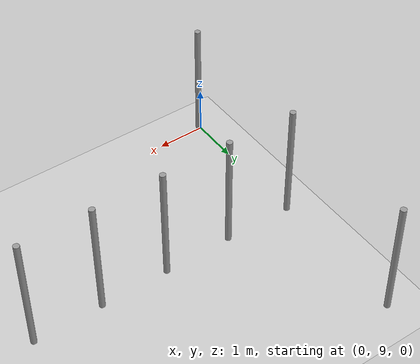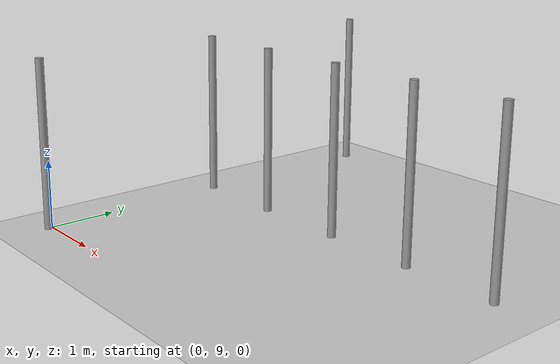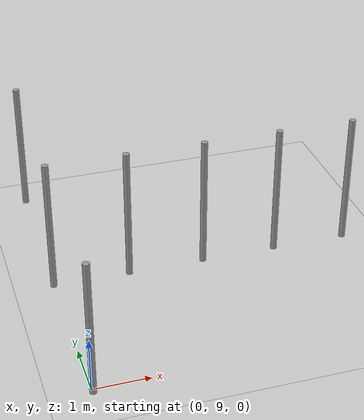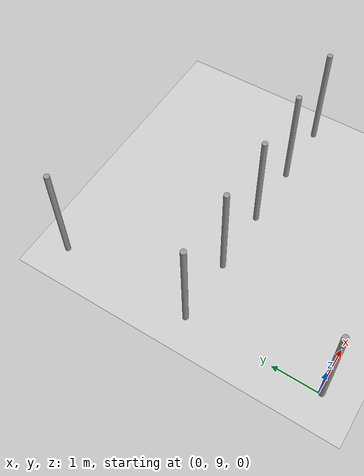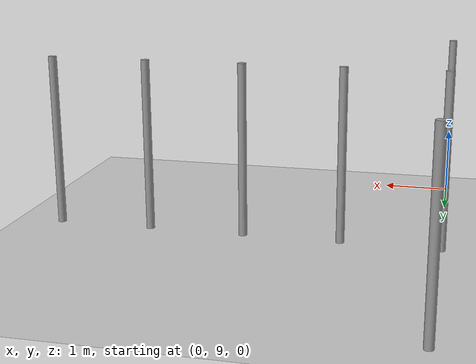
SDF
<sdf version="1.6">
 <world name="default">
  <model name="ground_plane">
   <static>1</static>
   <link name="link">
    <collision name="collision">
     <geometry><plane><normal>0 0 1</normal><size>100 100</size></plane></geometry>
     <surface><friction><ode><mu>100</mu><mu2>50</mu2></ode></friction></surface>
    </collision>
    <visual name="visual">
     <cast_shadows>0</cast_shadows>
     <geometry><plane><normal>0 0 1</normal><size>100 100</size></plane></geometry>
     <material>
      <script><uri>file://media/materials/scripts/gazebo.material</uri><name>Gazebo/Grey</name></script>
     </material>
    </visual>
   </link>
  </model>
  <model name="pole_0">
   <link name="link_0">
    <inertial>
     <mass>0.0364582</mass>
     <inertia>
      <ixx>0.00312124</ixx>
      <ixy>0</ixy>
      <ixz>0</ixz>
      <iyy>0.00312124</iyy>
      <iyz>0</iyz>
      <izz>0.00016615</izz>
     </inertia>
    </inertial>
    <visual name="visual">
     <geometry><cylinder><radius>0.06</radius><length>2.5</length></cylinder></geometry>
     <material>
      <lighting>1</lighting>
      <script><uri>file://media/materials/scripts/gazebo.material</uri><name>Gazebo/Grey</name></script>
      <ambient>0.3 0.3 0.3 1</ambient>
      <diffuse>0.7 0.7 0.7 1</diffuse>
      <specular>0.01 0.01 0.01 1</specular>
      <emissive>0 0 0 1</emissive>
      <shader type="vertex"><normal_map>__default__</normal_map></shader>
     </material>
    </visual>
    <collision name="collision">
     <geometry><cylinder><radius>0.06</radius><length>2.5</length></cylinder></geometry>
     <surface>
      <friction>
       <ode><mu>1</mu><mu2>1</mu2><fdir1>0 0 0</fdir1><slip1>0</slip1><slip2>0</slip2></ode>
       <torsional>
        <coefficient>1</coefficient>
        <patch_radius>0</patch_radius>
        <surface_radius>0</surface_radius>
        <use_patch_radius>1</use_patch_radius>
        <ode><slip>0</slip></ode>
       </torsional>
      </friction>
      <bounce><restitution_coefficient>0</restitution_coefficient><threshold>1e+06</threshold></bounce>
      <contact>
       <collide_without_contact>0</collide_without_contact>
       <collide_without_contact_bitmask>1</collide_without_contact_bitmask>
       <collide_bitmask>1</collide_bitmask>
       <ode>
        <soft_cfm>0</soft_cfm>
        <soft_erp>0.2</soft_erp>
        <kp>1e+13</kp>
        <kd>1</kd>
        <max_vel>0.01</max_vel>
        <min_depth>0</min_depth>
       </ode>
       <bullet>
        <split_impulse>1</split_impulse>
        <split_impulse_penetration_threshold>-0.01</split_impulse_penetration_threshold>
        <soft_cfm>0</soft_cfm>
        <soft_erp>0.2</soft_erp>
        <kp>1e+13</kp>
        <kd>1</kd>
       </bullet>
      </contact>
     </surface>
    </collision>
   </link>
   <static>0</static>
   <pose>0.013431 8.94089 1.25 1e-06 3e-06 -0.011813</pose>
  </model>
  <model name="pole_1">
   <link name="link_0">
    <inertial>
     <mass>0.0364582</mass>
     <inertia>
      <ixx>0.00312124</ixx>
      <ixy>0</ixy>
      <ixz>0</ixz>
      <iyy>0.00312124</iyy>
      <iyz>0</iyz>
      <izz>0.00016615</izz>
     </inertia>
    </inertial>
    <visual name="visual">
     <geometry><cylinder><radius>0.06</radius><length>2.5</length></cylinder></geometry>
     <material>
      <lighting>1</lighting>
      <script><uri>file://media/materials/scripts/gazebo.material</uri><name>Gazebo/Grey</name></script>
      <ambient>0.3 0.3 0.3 1</ambient>
      <diffuse>0.7 0.7 0.7 1</diffuse>
      <specular>0.01 0.01 0.01 1</specular>
      <emissive>0 0 0 1</emissive>
      <shader type="vertex"><normal_map>__default__</normal_map></shader>
     </material>
    </visual>
    <collision name="collision">
     <geometry><cylinder><radius>0.06</radius><length>2.5</length></cylinder></geometry>
     <surface>
      <friction>
       <ode><mu>1</mu><mu2>1</mu2><fdir1>0 0 0</fdir1><slip1>0</slip1><slip2>0</slip2></ode>
       <torsional>
        <coefficient>1</coefficient>
        <patch_radius>0</patch_radius>
        <surface_radius>0</surface_radius>
        <use_patch_radius>1</use_patch_radius>
        <ode><slip>0</slip></ode>
       </torsional>
      </friction>
      <bounce><restitution_coefficient>0</restitution_coefficient><threshold>1e+06</threshold></bounce>
      <contact>
       <collide_without_contact>0</collide_without_contact>
       <collide_without_contact_bitmask>1</collide_without_contact_bitmask>
       <collide_bitmask>1</collide_bitmask>
       <ode>
        <soft_cfm>0</soft_cfm>
        <soft_erp>0.2</soft_erp>
        <kp>1e+13</kp>
        <kd>1</kd>
        <max_vel>0.01</max_vel>
        <min_depth>0</min_depth>
       </ode>
       <bullet>
        <split_impulse>1</split_impulse>
        <split_impulse_penetration_threshold>-0.01</split_impulse_penetration_threshold>
        <soft_cfm>0</soft_cfm>
        <soft_erp>0.2</soft_erp>
        <kp>1e+13</kp>
        <kd>1</kd>
       </bullet>
      </contact>
     </surface>
    </collision>
   </link>
   <static>0</static>
   <pose>-0.008182 11.9208 1.24999 0 -2e-06 -0.013332</pose>
  </model>
  <model name="pole_2">
   <link name="link_0">
    <inertial>
     <mass>0.0364582</mass>
     <inertia>
      <ixx>0.00312124</ixx>
      <ixy>0</ixy>
      <ixz>0</ixz>
      <iyy>0.00312124</iyy>
      <iyz>0</iyz>
      <izz>0.00016615</izz>
     </inertia>
    </inertial>
    <visual name="visual">
     <geometry><cylinder><radius>0.06</radius><length>2.5</length></cylinder></geometry>
     <material>
      <lighting>1</lighting>
      <script><uri>file://media/materials/scripts/gazebo.material</uri><name>Gazebo/Grey</name></script>
      <ambient>0.3 0.3 0.3 1</ambient>
      <diffuse>0.7 0.7 0.7 1</diffuse>
      <specular>0.01 0.01 0.01 1</specular>
      <emissive>0 0 0 1</emissive>
      <shader type="vertex"><normal_map>__default__</normal_map></shader>
     </material>
    </visual>
    <collision name="collision">
     <geometry><cylinder><radius>0.06</radius><length>2.5</length></cylinder></geometry>
     <surface>
      <friction>
       <ode><mu>1</mu><mu2>1</mu2><fdir1>0 0 0</fdir1><slip1>0</slip1><slip2>0</slip2></ode>
       <torsional>
        <coefficient>1</coefficient>
        <patch_radius>0</patch_radius>
        <surface_radius>0</surface_radius>
        <use_patch_radius>1</use_patch_radius>
        <ode><slip>0</slip></ode>
       </torsional>
      </friction>
      <bounce><restitution_coefficient>0</restitution_coefficient><threshold>1e+06</threshold></bounce>
      <contact>
       <collide_without_contact>0</collide_without_contact>
       <collide_without_contact_bitmask>1</collide_without_contact_bitmask>
       <collide_bitmask>1</collide_bitmask>
       <ode>
        <soft_cfm>0</soft_cfm>
        <soft_erp>0.2</soft_erp>
        <kp>1e+13</kp>
        <kd>1</kd>
        <max_vel>0.01</max_vel>
        <min_depth>0</min_depth>
       </ode>
       <bullet>
        <split_impulse>1</split_impulse>
        <split_impulse_penetration_threshold>-0.01</split_impulse_penetration_threshold>
        <soft_cfm>0</soft_cfm>
        <soft_erp>0.2</soft_erp>
        <kp>1e+13</kp>
        <kd>1</kd>
       </bullet>
      </contact>
     </surface>
    </collision>
   </link>
   <static>0</static>
   <pose>0.027485 14.8937 1.25 0 2e-06 0.22432</pose>
  </model>
  <model name="pole_20">
   <link name="link_0">
    <inertial>
     <mass>0.0364582</mass>
     <inertia>
      <ixx>0.00312124</ixx>
      <ixy>0</ixy>
      <ixz>0</ixz>
      <iyy>0.00312124</iyy>
      <iyz>0</iyz>
      <izz>0.00016615</izz>
     </inertia>
    </inertial>
    <visual name="visual">
     <geometry><cylinder><radius>0.06</radius><length>2.5</length></cylinder></geometry>
     <material>
      <lighting>1</lighting>
      <script><uri>file://media/materials/scripts/gazebo.material</uri><name>Gazebo/Grey</name></script>
      <ambient>0.3 0.3 0.3 1</ambient>
      <diffuse>0.7 0.7 0.7 1</diffuse>
      <specular>0.01 0.01 0.01 1</specular>
      <emissive>0 0 0 1</emissive>
      <shader type="vertex"><normal_map>__default__</normal_map></shader>
     </material>
    </visual>
    <collision name="collision">
     <geometry><cylinder><radius>0.06</radius><length>2.5</length></cylinder></geometry>
     <surface>
      <friction>
       <ode><mu>1</mu><mu2>1</mu2><fdir1>0 0 0</fdir1><slip1>0</slip1><slip2>0</slip2></ode>
       <torsional>
        <coefficient>1</coefficient>
        <patch_radius>0</patch_radius>
        <surface_radius>0</surface_radius>
        <use_patch_radius>1</use_patch_radius>
        <ode><slip>0</slip></ode>
       </torsional>
      </friction>
      <bounce><restitution_coefficient>0</restitution_coefficient><threshold>1e+06</threshold></bounce>
      <contact>
       <collide_without_contact>0</collide_without_contact>
       <collide_without_contact_bitmask>1</collide_without_contact_bitmask>
       <collide_bitmask>1</collide_bitmask>
       <ode>
        <soft_cfm>0</soft_cfm>
        <soft_erp>0.2</soft_erp>
        <kp>1e+13</kp>
        <kd>1</kd>
        <max_vel>0.01</max_vel>
        <min_depth>0</min_depth>
       </ode>
       <bullet>
        <split_impulse>1</split_impulse>
        <split_impulse_penetration_threshold>-0.01</split_impulse_penetration_threshold>
        <soft_cfm>0</soft_cfm>
        <soft_erp>0.2</soft_erp>
        <kp>1e+13</kp>
        <kd>1</kd>
       </bullet>
      </contact>
     </surface>
    </collision>
   </link>
   <static>0</static>
   <pose>1.39573 11.9002 1.25 -1e-06 1e-06 -0.001101</pose>
  </model>
  <model name="pole_21">
   <link name="link_0">
    <inertial>
     <mass>0.0364582</mass>
     <inertia>
      <ixx>0.00312124</ixx>
      <ixy>0</ixy>
      <ixz>0</ixz>
      <iyy>0.00312124</iyy>
      <iyz>0</iyz>
      <izz>0.00016615</izz>
     </inertia>
    </inertial>
    <visual name="visual">
     <geometry><cylinder><radius>0.06</radius><length>2.5</length></cylinder></geometry>
     <material>
      <lighting>1</lighting>
      <script><uri>file://media/materials/scripts/gazebo.material</uri><name>Gazebo/Grey</name></script>
      <ambient>0.3 0.3 0.3 1</ambient>
      <diffuse>0.7 0.7 0.7 1</diffuse>
      <specular>0.01 0.01 0.01 1</specular>
      <emissive>0 0 0 1</emissive>
      <shader type="vertex"><normal_map>__default__</normal_map></shader>
     </material>
    </visual>
    <collision name="collision">
     <geometry><cylinder><radius>0.06</radius><length>2.5</length></cylinder></geometry>
     <surface>
      <friction>
       <ode><mu>1</mu><mu2>1</mu2><fdir1>0 0 0</fdir1><slip1>0</slip1><slip2>0</slip2></ode>
       <torsional>
        <coefficient>1</coefficient>
        <patch_radius>0</patch_radius>
        <surface_radius>0</surface_radius>
        <use_patch_radius>1</use_patch_radius>
        <ode><slip>0</slip></ode>
       </torsional>
      </friction>
      <bounce><restitution_coefficient>0</restitution_coefficient><threshold>1e+06</threshold></bounce>
      <contact>
       <collide_without_contact>0</collide_without_contact>
       <collide_without_contact_bitmask>1</collide_without_contact_bitmask>
       <collide_bitmask>1</collide_bitmask>
       <ode>
        <soft_cfm>0</soft_cfm>
        <soft_erp>0.2</soft_erp>
        <kp>1e+13</kp>
        <kd>1</kd>
        <max_vel>0.01</max_vel>
        <min_depth>0</min_depth>
       </ode>
       <bullet>
        <split_impulse>1</split_impulse>
        <split_impulse_penetration_threshold>-0.01</split_impulse_penetration_threshold>
        <soft_cfm>0</soft_cfm>
        <soft_erp>0.2</soft_erp>
        <kp>1e+13</kp>
        <kd>1</kd>
       </bullet>
      </contact>
     </surface>
    </collision>
   </link>
   <static>0</static>
   <pose>2.80809 11.9005 1.24999 -2.5e-05 0.000295 -0.016371</pose>
  </model>
  <model name="pole_22">
   <link name="link_0">
    <inertial>
     <mass>0.0364582</mass>
     <inertia>
      <ixx>0.00312124</ixx>
      <ixy>0</ixy>
      <ixz>0</ixz>
      <iyy>0.00312124</iyy>
      <iyz>0</iyz>
      <izz>0.00016615</izz>
     </inertia>
    </inertial>
    <visual name="visual">
     <geometry><cylinder><radius>0.06</radius><length>2.5</length></cylinder></geometry>
     <material>
      <lighting>1</lighting>
      <script><uri>file://media/materials/scripts/gazebo.material</uri><name>Gazebo/Grey</name></script>
      <ambient>0.3 0.3 0.3 1</ambient>
      <diffuse>0.7 0.7 0.7 1</diffuse>
      <specular>0.01 0.01 0.01 1</specular>
      <emissive>0 0 0 1</emissive>
      <shader type="vertex"><normal_map>__default__</normal_map></shader>
     </material>
    </visual>
    <collision name="collision">
     <geometry><cylinder><radius>0.06</radius><length>2.5</length></cylinder></geometry>
     <surface>
      <friction>
       <ode><mu>1</mu><mu2>1</mu2><fdir1>0 0 0</fdir1><slip1>0</slip1><slip2>0</slip2></ode>
       <torsional>
        <coefficient>1</coefficient>
        <patch_radius>0</patch_radius>
        <surface_radius>0</surface_radius>
        <use_patch_radius>1</use_patch_radius>
        <ode><slip>0</slip></ode>
       </torsional>
      </friction>
      <bounce><restitution_coefficient>0</restitution_coefficient><threshold>1e+06</threshold></bounce>
      <contact>
       <collide_without_contact>0</collide_without_contact>
       <collide_without_contact_bitmask>1</collide_without_contact_bitmask>
       <collide_bitmask>1</collide_bitmask>
       <ode>
        <soft_cfm>0</soft_cfm>
        <soft_erp>0.2</soft_erp>
        <kp>1e+13</kp>
        <kd>1</kd>
        <max_vel>0.01</max_vel>
        <min_depth>0</min_depth>
       </ode>
       <bullet>
        <split_impulse>1</split_impulse>
        <split_impulse_penetration_threshold>-0.01</split_impulse_penetration_threshold>
        <soft_cfm>0</soft_cfm>
        <soft_erp>0.2</soft_erp>
        <kp>1e+13</kp>
        <kd>1</kd>
       </bullet>
      </contact>
     </surface>
    </collision>
   </link>
   <static>0</static>
   <pose>4.21201 11.9 1.25 -1e-06 1e-06 0.000427</pose>
  </model>
  <model name="pole_23">
   <link name="link_0">
    <inertial>
     <mass>0.0364582</mass>
     <inertia>
      <ixx>0.00312124</ixx>
      <ixy>0</ixy>
      <ixz>0</ixz>
      <iyy>0.00312124</iyy>
      <iyz>0</iyz>
      <izz>0.00016615</izz>
     </inertia>
    </inertial>
    <visual name="visual">
     <geometry><cylinder><radius>0.06</radius><length>2.5</length></cylinder></geometry>
     <material>
      <lighting>1</lighting>
      <script><uri>file://media/materials/scripts/gazebo.material</uri><name>Gazebo/Grey</name></script>
      <ambient>0.3 0.3 0.3 1</ambient>
      <diffuse>0.7 0.7 0.7 1</diffuse>
      <specular>0.01 0.01 0.01 1</specular>
      <emissive>0 0 0 1</emissive>
      <shader type="vertex"><normal_map>__default__</normal_map></shader>
     </material>
    </visual>
    <collision name="collision">
     <geometry><cylinder><radius>0.06</radius><length>2.5</length></cylinder></geometry>
     <surface>
      <friction>
       <ode><mu>1</mu><mu2>1</mu2><fdir1>0 0 0</fdir1><slip1>0</slip1><slip2>0</slip2></ode>
       <torsional>
        <coefficient>1</coefficient>
        <patch_radius>0</patch_radius>
        <surface_radius>0</surface_radius>
        <use_patch_radius>1</use_patch_radius>
        <ode><slip>0</slip></ode>
       </torsional>
      </friction>
      <bounce><restitution_coefficient>0</restitution_coefficient><threshold>1e+06</threshold></bounce>
      <contact>
       <collide_without_contact>0</collide_without_contact>
       <collide_without_contact_bitmask>1</collide_without_contact_bitmask>
       <collide_bitmask>1</collide_bitmask>
       <ode>
        <soft_cfm>0</soft_cfm>
        <soft_erp>0.2</soft_erp>
        <kp>1e+13</kp>
        <kd>1</kd>
        <max_vel>0.01</max_vel>
        <min_depth>0</min_depth>
       </ode>
       <bullet>
        <split_impulse>1</split_impulse>
        <split_impulse_penetration_threshold>-0.01</split_impulse_penetration_threshold>
        <soft_cfm>0</soft_cfm>
        <soft_erp>0.2</soft_erp>
        <kp>1e+13</kp>
        <kd>1</kd>
       </bullet>
      </contact>
     </surface>
    </collision>
   </link>
   <static>0</static>
   <pose>5.616 11.9 1.24999 -1e-06 -0 0.00015</pose>
  </model>
 </world>
</sdf>
